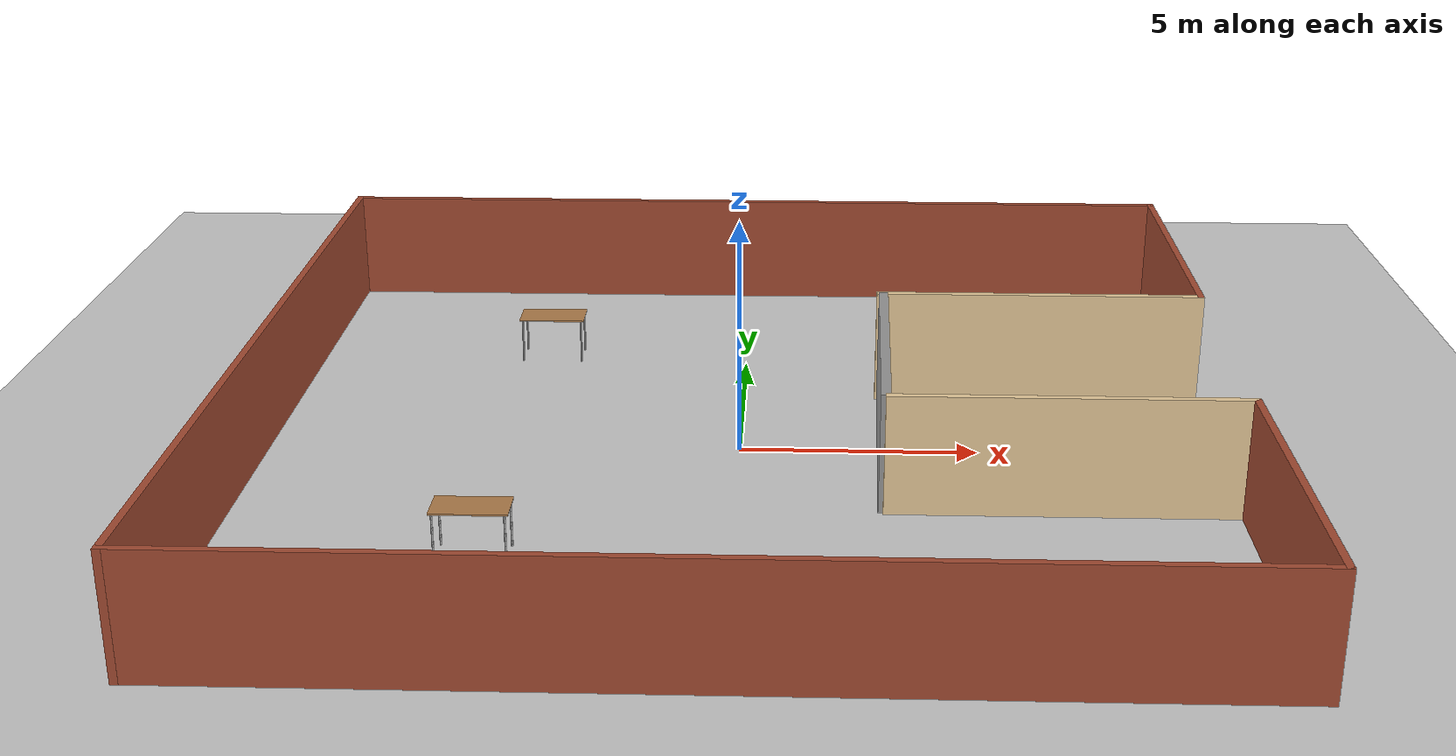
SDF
<sdf version="1.6">
 <world name="default">
  <light name="sun" type="directional">
   <pose>0 0 10 0 -0 0</pose>
   <diffuse>0.8 0.8 0.8 1</diffuse>
   <specular>0.2 0.2 0.2 1</specular>
   <attenuation>
    <range>1000</range>
    <constant>0.9</constant>
    <linear>0.01</linear>
    <quadratic>0.001</quadratic>
   </attenuation>
   <direction>-0.5 0.1 -0.9</direction>
  </light>
  <model name="ground_plane">
   <static>1</static>
   <link name="link">
    <collision name="collision">
     <geometry><plane><normal>0 0 1</normal><size>100 100</size></plane></geometry>
     <surface>
      <contact><collide_bitmask>65535</collide_bitmask></contact>
      <friction><ode><mu>100</mu><mu2>50</mu2></ode></friction>
     </surface>
    </collision>
    <visual name="visual">
     <cast_shadows>0</cast_shadows>
     <geometry><plane><normal>0 0 1</normal><size>100 100</size></plane></geometry>
     <material>
      <script><uri>file://media/materials/scripts/gazebo.material</uri><name>Gazebo/Grey</name></script>
     </material>
    </visual>
   </link>
  </model>
  <gravity>0 0 -9.8</gravity>
  <magnetic_field>6e-06 2.3e-05 -4.2e-05</magnetic_field>
  <atmosphere type="adiabatic"/>
  <physics name="default_physics" default="0" type="ode">
   <max_step_size>0.001</max_step_size>
   <real_time_factor>1</real_time_factor>
   <real_time_update_rate>1000</real_time_update_rate>
  </physics>
  <scene><ambient>0.4 0.4 0.4 1</ambient><background>0.7 0.7 0.7 1</background><shadows>1</shadows></scene>
  <spherical_coordinates>
   <surface_model>EARTH_WGS84</surface_model>
   <latitude_deg>0</latitude_deg>
   <longitude_deg>0</longitude_deg>
   <elevation>0</elevation>
   <heading_deg>0</heading_deg>
  </spherical_coordinates>
  <model name="Building_0">
   <link name="Door_0">
    <collision name="Door_0_Collision">
     <geometry><box><size>6 0.2 2.5</size></box></geometry>
     <pose>0 0 1.25 0 -0 0</pose>
    </collision>
    <visual name="Door_0_Visual">
     <pose>0 0 1.25 0 -0 0</pose>
     <geometry><box><size>6 0.2 2.5</size></box></geometry>
     <material>
      <script><uri>file://media/materials/scripts/gazebo.material</uri><name>Gazebo/Grey</name></script>
     </material>
    </visual>
    <pose>3 0 0 0 -0 1.54682</pose>
   </link>
   <link name="Wall_10">
    <collision name="Wall_10_Collision">
     <geometry><box><size>20.15 0.15 2.5</size></box></geometry>
     <pose>0 0 1.25 0 -0 0</pose>
    </collision>
    <visual name="Wall_10_Visual">
     <pose>0 0 1.25 0 -0 0</pose>
     <geometry><box><size>20.15 0.15 2.5</size></box></geometry>
     <material>
      <script><uri>file://media/materials/scripts/gazebo.material</uri><name>Gazebo/Bricks</name></script>
      <ambient>1 1 1 1</ambient>
     </material>
     <meta><layer>0</layer></meta>
    </visual>
    <pose>-10 0 0 0 -0 1.5708</pose>
   </link>
   <link name="Wall_11">
    <collision name="Wall_11_Collision">
     <geometry><box><size>20.15 0.15 2.5</size></box></geometry>
     <pose>0 0 1.25 0 -0 0</pose>
    </collision>
    <visual name="Wall_11_Visual">
     <pose>0 0 1.25 0 -0 0</pose>
     <geometry><box><size>20.15 0.15 2.5</size></box></geometry>
     <material>
      <script><uri>file://media/materials/scripts/gazebo.material</uri><name>Gazebo/Bricks</name></script>
      <ambient>1 1 1 1</ambient>
     </material>
     <meta><layer>0</layer></meta>
    </visual>
    <pose>0 10 0 0 -0 0</pose>
   </link>
   <link name="Wall_12">
    <collision name="Wall_12_Collision">
     <geometry><box><size>7.15 0.15 2.5</size></box></geometry>
     <pose>0 0 1.25 0 -0 0</pose>
    </collision>
    <visual name="Wall_12_Visual">
     <pose>0 0 1.25 0 -0 0</pose>
     <geometry><box><size>7.15 0.15 2.5</size></box></geometry>
     <material>
      <script><uri>file://media/materials/scripts/gazebo.material</uri><name>Gazebo/Bricks</name></script>
      <ambient>1 1 1 1</ambient>
     </material>
     <meta><layer>0</layer></meta>
    </visual>
    <pose>10 6.5 0 0 -0 -1.5708</pose>
   </link>
   <link name="Wall_13">
    <collision name="Wall_13_Collision">
     <geometry><box><size>7.15 0.15 2.5</size></box></geometry>
     <pose>0 0 1.25 0 -0 0</pose>
    </collision>
    <visual name="Wall_13_Visual">
     <pose>0 0 1.25 0 -0 0</pose>
     <geometry><box><size>7.15 0.15 2.5</size></box></geometry>
     <material>
      <script><uri>file://media/materials/scripts/gazebo.material</uri><name>Gazebo/Grey</name></script>
      <ambient>0.921569 0.807843 0.615686 1</ambient>
     </material>
     <meta><layer>0</layer></meta>
    </visual>
    <pose>6.5 3 0 0 -0 3.14159</pose>
   </link>
   <link name="Wall_7">
    <collision name="Wall_7_Collision">
     <geometry><box><size>7.15 0.15 2.5</size></box></geometry>
     <pose>0 0 1.25 0 -0 0</pose>
    </collision>
    <visual name="Wall_7_Visual">
     <pose>0 0 1.25 0 -0 0</pose>
     <geometry><box><size>7.15 0.15 2.5</size></box></geometry>
     <material>
      <script><uri>file://media/materials/scripts/gazebo.material</uri><name>Gazebo/Grey</name></script>
      <ambient>0.921569 0.807843 0.615686 1</ambient>
     </material>
     <meta><layer>0</layer></meta>
    </visual>
    <pose>6.5 -3 0 0 -0 0</pose>
   </link>
   <link name="Wall_8">
    <collision name="Wall_8_Collision">
     <geometry><box><size>7.15 0.15 2.5</size></box></geometry>
     <pose>0 0 1.25 0 -0 0</pose>
    </collision>
    <visual name="Wall_8_Visual">
     <pose>0 0 1.25 0 -0 0</pose>
     <geometry><box><size>7.15 0.15 2.5</size></box></geometry>
     <material>
      <script><uri>file://media/materials/scripts/gazebo.material</uri><name>Gazebo/Bricks</name></script>
      <ambient>1 1 1 1</ambient>
     </material>
     <meta><layer>0</layer></meta>
    </visual>
    <pose>10 -6.5 0 0 -0 -1.5708</pose>
   </link>
   <link name="Wall_9">
    <collision name="Wall_9_Collision">
     <geometry><box><size>20.15 0.15 2.5</size></box></geometry>
     <pose>0 0 1.25 0 -0 0</pose>
    </collision>
    <visual name="Wall_9_Visual">
     <pose>0 0 1.25 0 -0 0</pose>
     <geometry><box><size>20.15 0.15 2.5</size></box></geometry>
     <material>
      <script><uri>file://media/materials/scripts/gazebo.material</uri><name>Gazebo/Bricks</name></script>
      <ambient>1 1 1 1</ambient>
     </material>
     <meta><layer>0</layer></meta>
    </visual>
    <pose>0 -10 0 0 -0 3.14159</pose>
   </link>
   <static>1</static>
  </model>
  <model name="table">
   <static>1</static>
   <link name="link">
    <collision name="surface">
     <pose>0 0 1 0 -0 0</pose>
     <geometry><box><size>1.5 0.8 0.03</size></box></geometry>
     <surface><friction><ode><mu>0.6</mu><mu2>0.6</mu2></ode></friction></surface>
    </collision>
    <visual name="visual1">
     <pose>0 0 1 0 -0 0</pose>
     <geometry><box><size>1.5 0.8 0.03</size></box></geometry>
     <material>
      <script><uri>file://media/materials/scripts/gazebo.material</uri><name>Gazebo/Wood</name></script>
     </material>
    </visual>
    <collision name="front_left_leg">
     <pose>0.68 0.38 0.5 0 -0 0</pose>
     <geometry><cylinder><radius>0.02</radius><length>1</length></cylinder></geometry>
    </collision>
    <visual name="front_left_leg">
     <pose>0.68 0.38 0.5 0 -0 0</pose>
     <geometry><cylinder><radius>0.02</radius><length>1</length></cylinder></geometry>
     <material>
      <script><uri>file://media/materials/scripts/gazebo.material</uri><name>Gazebo/Grey</name></script>
     </material>
    </visual>
    <collision name="front_right_leg">
     <pose>0.68 -0.38 0.5 0 -0 0</pose>
     <geometry><cylinder><radius>0.02</radius><length>1</length></cylinder></geometry>
    </collision>
    <visual name="front_right_leg">
     <pose>0.68 -0.38 0.5 0 -0 0</pose>
     <geometry><cylinder><radius>0.02</radius><length>1</length></cylinder></geometry>
     <material>
      <script><uri>file://media/materials/scripts/gazebo.material</uri><name>Gazebo/Grey</name></script>
     </material>
    </visual>
    <collision name="back_right_leg">
     <pose>-0.68 -0.38 0.5 0 -0 0</pose>
     <geometry><cylinder><radius>0.02</radius><length>1</length></cylinder></geometry>
    </collision>
    <visual name="back_right_leg">
     <pose>-0.68 -0.38 0.5 0 -0 0</pose>
     <geometry><cylinder><radius>0.02</radius><length>1</length></cylinder></geometry>
     <material>
      <script><uri>file://media/materials/scripts/gazebo.material</uri><name>Gazebo/Grey</name></script>
     </material>
    </visual>
    <collision name="back_left_leg">
     <pose>-0.68 0.38 0.5 0 -0 0</pose>
     <geometry><cylinder><radius>0.02</radius><length>1</length></cylinder></geometry>
    </collision>
    <visual name="back_left_leg">
     <pose>-0.68 0.38 0.5 0 -0 0</pose>
     <geometry><cylinder><radius>0.02</radius><length>1</length></cylinder></geometry>
     <material>
      <script><uri>file://media/materials/scripts/gazebo.material</uri><name>Gazebo/Grey</name></script>
     </material>
    </visual>
   </link>
   <pose>-4.8212 -5.07911 0 0 -0 0</pose>
  </model>
  <model name="table_0">
   <static>1</static>
   <link name="link">
    <collision name="surface">
     <pose>0 0 1 0 -0 0</pose>
     <geometry><box><size>1.5 0.8 0.03</size></box></geometry>
     <surface><friction><ode><mu>0.6</mu><mu2>0.6</mu2></ode></friction></surface>
    </collision>
    <visual name="visual1">
     <pose>0 0 1 0 -0 0</pose>
     <geometry><box><size>1.5 0.8 0.03</size></box></geometry>
     <material>
      <script><uri>file://media/materials/scripts/gazebo.material</uri><name>Gazebo/Wood</name></script>
     </material>
    </visual>
    <collision name="front_left_leg">
     <pose>0.68 0.38 0.5 0 -0 0</pose>
     <geometry><cylinder><radius>0.02</radius><length>1</length></cylinder></geometry>
    </collision>
    <visual name="front_left_leg">
     <pose>0.68 0.38 0.5 0 -0 0</pose>
     <geometry><cylinder><radius>0.02</radius><length>1</length></cylinder></geometry>
     <material>
      <script><uri>file://media/materials/scripts/gazebo.material</uri><name>Gazebo/Grey</name></script>
     </material>
    </visual>
    <collision name="front_right_leg">
     <pose>0.68 -0.38 0.5 0 -0 0</pose>
     <geometry><cylinder><radius>0.02</radius><length>1</length></cylinder></geometry>
    </collision>
    <visual name="front_right_leg">
     <pose>0.68 -0.38 0.5 0 -0 0</pose>
     <geometry><cylinder><radius>0.02</radius><length>1</length></cylinder></geometry>
     <material>
      <script><uri>file://media/materials/scripts/gazebo.material</uri><name>Gazebo/Grey</name></script>
     </material>
    </visual>
    <collision name="back_right_leg">
     <pose>-0.68 -0.38 0.5 0 -0 0</pose>
     <geometry><cylinder><radius>0.02</radius><length>1</length></cylinder></geometry>
    </collision>
    <visual name="back_right_leg">
     <pose>-0.68 -0.38 0.5 0 -0 0</pose>
     <geometry><cylinder><radius>0.02</radius><length>1</length></cylinder></geometry>
     <material>
      <script><uri>file://media/materials/scripts/gazebo.material</uri><name>Gazebo/Grey</name></script>
     </material>
    </visual>
    <collision name="back_left_leg">
     <pose>-0.68 0.38 0.5 0 -0 0</pose>
     <geometry><cylinder><radius>0.02</radius><length>1</length></cylinder></geometry>
    </collision>
    <visual name="back_left_leg">
     <pose>-0.68 0.38 0.5 0 -0 0</pose>
     <geometry><cylinder><radius>0.02</radius><length>1</length></cylinder></geometry>
     <material>
      <script><uri>file://media/materials/scripts/gazebo.material</uri><name>Gazebo/Grey</name></script>
     </material>
    </visual>
   </link>
   <pose>-4.56168 5.45817 0 0 -0 0</pose>
  </model>
  <model name="my_ball_0">
   <link name="link_0">
    <inertial>
     <mass>1</mass>
     <inertia><ixx>0.1</ixx><ixy>0</ixy><ixz>0</ixz><iyy>0.1</iyy><iyz>0</iyz><izz>0.1</izz></inertia>
    </inertial>
    <visual name="visual">
     <geometry><sphere><radius>0.1</radius></sphere></geometry>
     <material>
      <lighting>1</lighting>
      <script><uri>file://media/materials/scripts/gazebo.material</uri><name>Gazebo/Grey</name></script>
      <shader type="pixel"><normal_map>__default__</normal_map></shader>
      <ambient>1 1 1 1</ambient>
      <diffuse>1 1 1 1</diffuse>
      <specular>1 1 1 1</specular>
      <emissive>1 1 1 1</emissive>
     </material>
    </visual>
    <collision name="collision">
     <geometry><sphere><radius>0.1</radius></sphere></geometry>
     <surface>
      <friction>
       <ode><mu>1</mu><mu2>1</mu2><fdir1>0 0 0</fdir1><slip1>0</slip1><slip2>0</slip2></ode>
       <torsional>
        <coefficient>1</coefficient>
        <patch_radius>0</patch_radius>
        <surface_radius>0</surface_radius>
        <use_patch_radius>1</use_patch_radius>
        <ode><slip>0</slip></ode>
       </torsional>
      </friction>
      <bounce><restitution_coefficient>0</restitution_coefficient><threshold>1e+06</threshold></bounce>
      <contact>
       <collide_without_contact>0</collide_without_contact>
       <collide_without_contact_bitmask>1</collide_without_contact_bitmask>
       <collide_bitmask>1</collide_bitmask>
       <ode>
        <soft_cfm>0</soft_cfm>
        <soft_erp>0.2</soft_erp>
        <kp>1e+13</kp>
        <kd>1</kd>
        <max_vel>0.01</max_vel>
        <min_depth>0</min_depth>
       </ode>
       <bullet>
        <split_impulse>1</split_impulse>
        <split_impulse_penetration_threshold>-0.01</split_impulse_penetration_threshold>
        <soft_cfm>0</soft_cfm>
        <soft_erp>0.2</soft_erp>
        <kp>1e+13</kp>
        <kd>1</kd>
       </bullet>
      </contact>
     </surface>
    </collision>
   </link>
   <static>0</static>
   <pose>5.73672 1.96551 0.1 0 -0 0</pose>
  </model>
  <plugin filename="libcollision_map_creator.so" name="collision_map_creator"/>
 </world>
</sdf>
